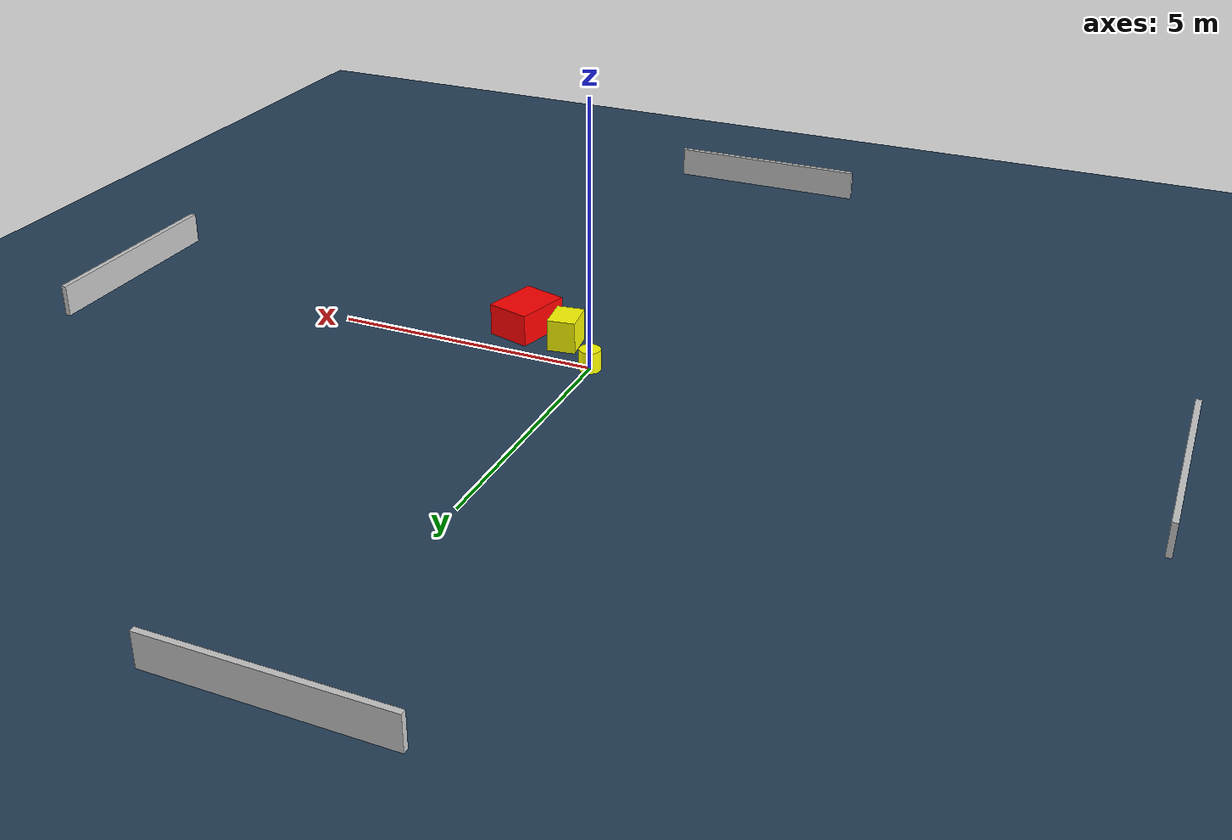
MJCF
<?xml version="1.0" ?>
<mujoco model="generated_environment">
  <option timestep="0.01" integrator="RK4" cone="elliptic"/>
  <default>
    <geom density="1"/>
  </default>
  <asset>
    <texture builtin="gradient" height="3072" name="skybox" rgb1="0.3 0.5 0.7" rgb2="0 0 0" type="skybox" width="512"/>
    <texture builtin="checker" height="300" name="groundplane" rgb1="0.2 0.3 0.4" rgb2="0.1 0.2 0.3" type="2d" width="300"/>
    <material name="groundplane" reflectance="0.2" texrepeat="5 5" texture="groundplane"/>
  </asset>
  <worldbody>
    <light dir="0 0 -1" directional="true" pos="0 0 1.5"/>
    <geom condim="3" friction="0.5 0.005 0.001" material="groundplane" name="floor" pos="0 0 0" size="0 0 0.05" type="plane"/>
    <body name="walls">
      <geom name="wall_1" condim="4" pos="-10.0 0.0 0.3" rgba="0.800000011920929 0.800000011920929 0.800000011920929 1.0" size="0.05 2.0 0.3" type="box"/>
      <geom name="wall_2" condim="4" pos="10.0 0.0 0.3" rgba="0.800000011920929 0.800000011920929 0.800000011920929 1.0" size="0.05 2.0 0.3" type="box"/>
      <geom name="wall_3" condim="4" pos="0.0 -10.0 0.3" rgba="0.800000011920929 0.800000011920929 0.800000011920929 1.0" size="2.0 0.05 0.3" type="box"/>
      <geom name="wall_4" condim="4" pos="0.0 10.0 0.3" rgba="0.800000011920929 0.800000011920929 0.800000011920929 1.0" size="2.0 0.05 0.3" type="box"/>
    </body>
    <body name="robot">
      <joint name="joint_x" type="slide" pos="0 0 0" axis="1 0 0"/>
      <joint name="joint_y" type="slide" pos="0 0 0" axis="0 1 0"/>
      <geom name="robot" type="cylinder" pos="0.0 0.0 0.2" size="0.2 0.2 0.0" mass="5.0" friction="1.0 0.005 0.0001" condim="4" rgba="1.0 1.0 0.0 1.0"/>
    </body>
    <body name="obstacle_1_movable">
      <geom name="obstacle_1_movable" condim="4" pos="0.7964975950606749 -0.7150743511806749 0.3" euler="0 0 187.84008478780305" friction="0.0 0.005 0.001" rgba="1.0 1.0 0.0 1.0" size="0.2610692076990856 0.32575837760452353 0.3" type="box" mass="0.1"/>
      <joint type="free"/>
    </body>
    <body name="obstacle_2_static">
      <geom name="obstacle_2_static" condim="4" pos="1.7157879721740068 -0.9630471597135668 0.3" euler="0 0 164.7753461629779" friction="0.0 0.005 0.001" rgba="1.0 0.0 0.0 1.0" size="0.41473427949778513 0.5323142775505613 0.3" type="box"/>
    </body>
  </worldbody>
  <actuator>
    <motor name="actuator_x" joint="joint_x" gear="1" ctrlrange="-1 1"/>
    <motor name="actuator_y" joint="joint_y" gear="1" ctrlrange="-1 1"/>
  </actuator>
</mujoco>
